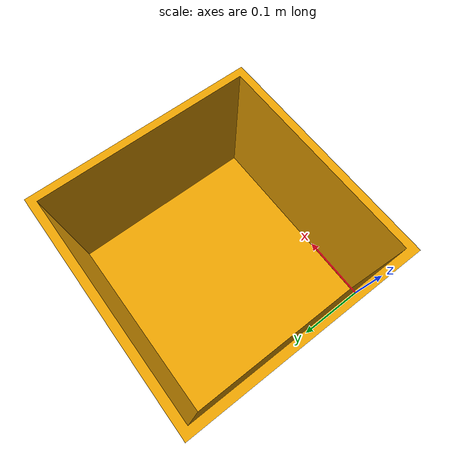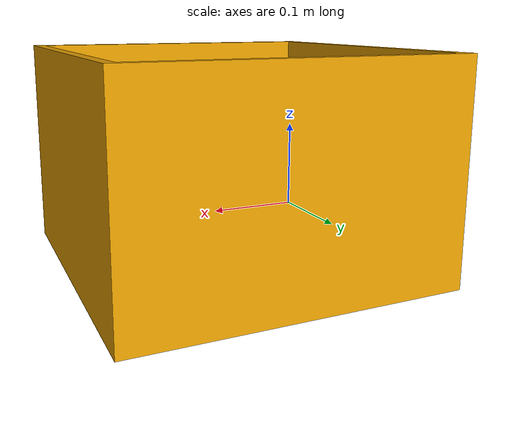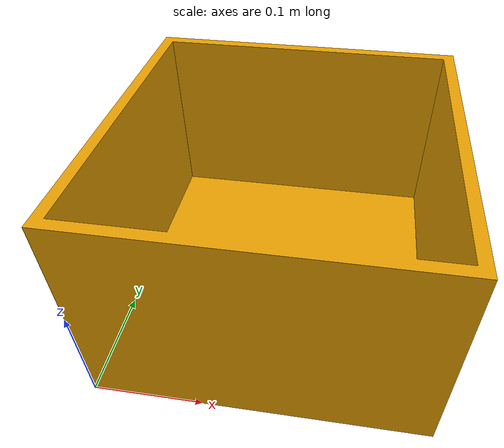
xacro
<?xml version="1.0" ?>
<robot name="container" xmlns:xacro="http://www.ros.org/wiki/xacro">
  <link name="container">
    <visual>
      <origin rpy="0 0 0" xyz="0 0 0"/>
      <geometry>
        <mesh filename="package://birl_baxter_description/meshes/container/container.STL"/>
      </geometry>
    </visual>
    <collision>
      <origin rpy="0 0 0" xyz="0 0 0"/>
      <geometry>
        <mesh filename="package://birl_baxter_description/meshes/container/container.STL"/>
      </geometry>
    </collision>
    <inertial>
      <origin rpy="0 0 0" xyz="0 0 0"/>
      <mass value="0.586397744"/>
      <inertia ixx="0.001" ixy="0.00103417" ixz="0.80199628" iyy="6.08689388" iyz="0.00105311" izz="4.96191932"/>
    </inertial>
  </link>
  <gazebo reference="container">
    <self_collide>1</self_collide>
    <mu1>1000000</mu1>
    <mu2>1000000</mu2>
    <fdir1>0.0 0.0 1.0</fdir1>
    <kp>1e5</kp>
    <kd>1.0</kd>
  </gazebo>

</robot>
